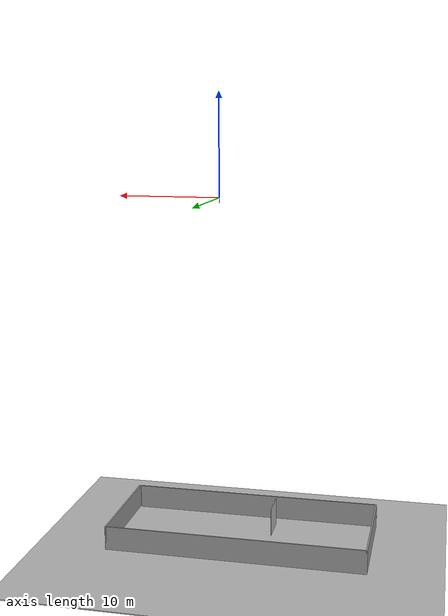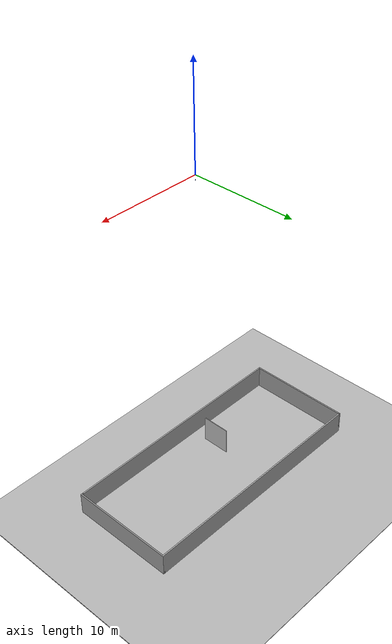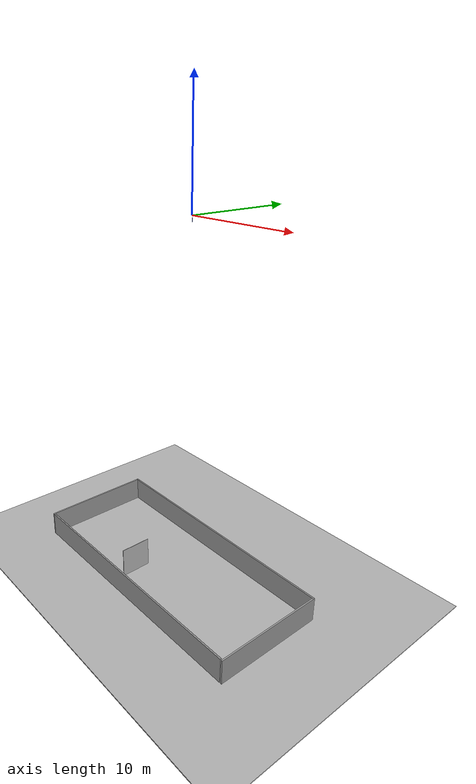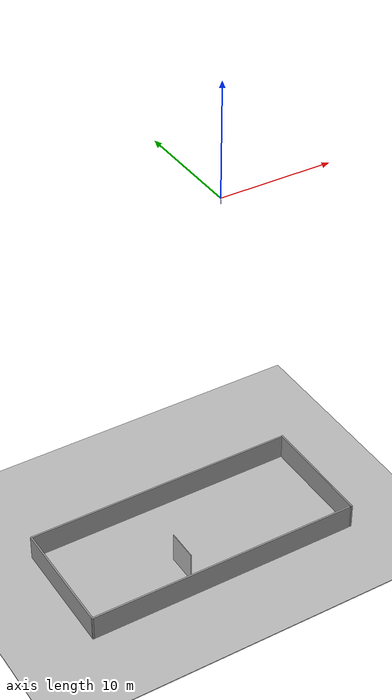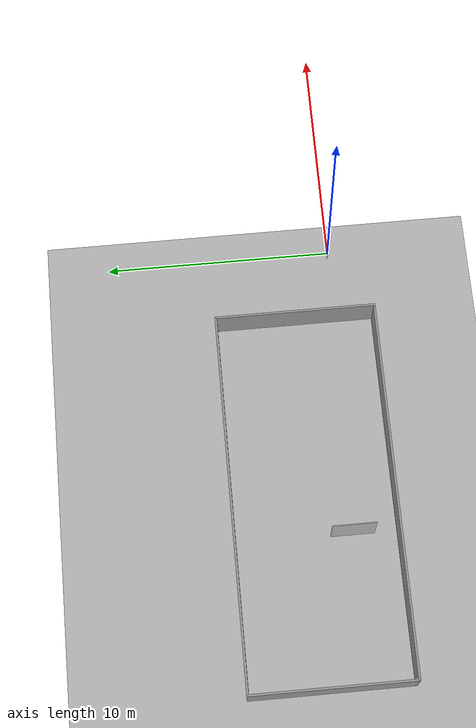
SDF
<sdf version="1.7">
 <world name="oceans_waves">
  <physics name="default_physics" default="1" type="ode">
   <max_step_size>0.002</max_step_size>
   <real_time_factor>1</real_time_factor>
   <real_time_update_rate>500</real_time_update_rate>
  </physics>
  <scene>
   <ambient>0.01 0.01 0.01 1</ambient>
   <sky><clouds><speed>12</speed></clouds></sky>
   <shadows>1</shadows>
   <background>0.7 0.7 0.7 1</background>
  </scene>
  <spherical_coordinates>
   <latitude_deg>56.719</latitude_deg>
   <longitude_deg>3.51562</longitude_deg>
   <surface_model>EARTH_WGS84</surface_model>
   <elevation>0</elevation>
   <heading_deg>0</heading_deg>
  </spherical_coordinates>
  <light name="sun1" type="directional">
   <pose>50 0 150 0 -0 0</pose>
   <diffuse>1 1 1 1</diffuse>
   <specular>0.1 0.1 0.1 1</specular>
   <direction>0.3 0.3 -1</direction>
   <cast_shadows>0</cast_shadows>
   <attenuation><range>10</range></attenuation>
   <spot><inner_angle>0</inner_angle><outer_angle>0</outer_angle><falloff>0</falloff></spot>
  </light>
  <light name="sun_diffuse" type="directional">
   <pose>-50 0 -150 0 -0 0</pose>
   <diffuse>0.6 0.6 0.6 1</diffuse>
   <specular>0 0 0 1</specular>
   <direction>-0.3 -0.3 -1</direction>
   <cast_shadows>0</cast_shadows>
   <attenuation><range>10</range></attenuation>
   <spot><inner_angle>0</inner_angle><outer_angle>0</outer_angle><falloff>0</falloff></spot>
  </light>
  <model name="world_ned">
   <static>1</static>
   <link name="world_ned">
    <gravity>0</gravity>
    <pose>0 0 0 -3.14159 -0 1.5708</pose>
    <visual name="N_visual">
     <pose>0.25 0 0 1.5708 -0 1.5708</pose>
     <geometry><cylinder><radius>0.01</radius><length>0.5</length></cylinder></geometry>
     <material>
      <script><uri>file://media/materials/scripts/gazebo.material</uri><name>Gazebo/Red</name></script>
     </material>
    </visual>
    <visual name="E_visual">
     <pose>0 0.25 0 1.5708 -0 0</pose>
     <geometry><cylinder><radius>0.01</radius><length>0.5</length></cylinder></geometry>
     <material>
      <script><uri>file://media/materials/scripts/gazebo.material</uri><name>Gazebo/Green</name></script>
     </material>
    </visual>
    <visual name="D_visual">
     <pose>0 0 0.25 0 -0 0</pose>
     <geometry><cylinder><radius>0.01</radius><length>0.5</length></cylinder></geometry>
     <material>
      <script><uri>file://media/materials/scripts/gazebo.material</uri><name>Gazebo/Blue</name></script>
     </material>
    </visual>
   </link>
  </model>
  <model name="sea_bottom">
   <static>1</static>
   <link name="sea_bottom">
    <collision name="collision"><geometry><box><size>2000 2000 0.1</size></box></geometry></collision>
    <visual name="visual">
     <cast_shadows>0</cast_shadows>
     <geometry><box><size>2000 2000 0.1</size></box></geometry>
     <material>
      <script>
       <uri>file://Media/materials/scripts/sand.material</uri>
       <name>UUVSimulator/SandAndStones</name>
      </script>
      <emissive>0.2 0.2 0.2 1</emissive>
     </material>
    </visual>
   </link>
   <pose>0 0 -35 0 -0 0</pose>
  </model>
  <plugin name="underwater_current_plugin" filename="libuuv_underwater_current_ros_plugin.so">
   <namespace>hydrodynamics</namespace>
   <constant_current>
    <topic>current_velocity</topic>
    <velocity><mean>0</mean><min>0</min><max>5</max><mu>0.0</mu><noiseAmp>0.0</noiseAmp></velocity>
    <horizontal_angle>
     <mean>0</mean>
     <min>-3.141592653589793238</min>
     <max>3.141592653589793238</max>
     <mu>0.0</mu>
     <noiseAmp>0.0</noiseAmp>
    </horizontal_angle>
    <vertical_angle>
     <mean>0</mean>
     <min>-3.141592653589793238</min>
     <max>3.141592653589793238</max>
     <mu>0.0</mu>
     <noiseAmp>0.0</noiseAmp>
    </vertical_angle>
   </constant_current>
  </plugin>
  <plugin name="sc_interface" filename="libuuv_sc_ros_interface_plugin.so"/>
  <gravity>0 0 -9.8</gravity>
  <magnetic_field>6e-06 2.3e-05 -4.2e-05</magnetic_field>
  <atmosphere type="adiabatic"/>
  <model name="Marker0">
   <static>1</static>
   <link name="link">
    <visual name="visual">
     <geometry><mesh><uri>model://marker0/meshes/Marker0.dae</uri><scale>6 6 6</scale></mesh></geometry>
    </visual>
   </link>
   <pose>-5.06799 -2.46516 -35 0 -0 0</pose>
  </model>
  <model name="swimming_pool_bigger">
   <pose>0 0 -35 0 -0 0</pose>
   <link name="Wall_5">
    <collision name="Wall_5_Collision">
     <geometry><box><size>11.25 0.15 2.5</size></box></geometry>
     <pose>0 0 1.25 0 -0 0</pose>
    </collision>
    <visual name="Wall_5_Visual">
     <pose>0 0 1.25 0 -0 0</pose>
     <geometry><box><size>11.25 0.15 2.5</size></box></geometry>
     <material>
      <script><uri>file://media/materials/scripts/gazebo.material</uri><name>Gazebo/Grey</name></script>
      <ambient>1 1 1 1</ambient>
     </material>
     <meta><layer>0</layer></meta>
    </visual>
    <pose>-15.5179 0 0 0 -0 1.5708</pose>
   </link>
   <link name="Wall_6">
    <collision name="Wall_6_Collision">
     <geometry><box><size>26.25 0.15 2.5</size></box></geometry>
     <pose>0 0 1.25 0 -0 0</pose>
    </collision>
    <visual name="Wall_6_Visual">
     <pose>0 0 1.25 0 -0 0</pose>
     <geometry><box><size>26.25 0.15 2.5</size></box></geometry>
     <material>
      <script><uri>file://media/materials/scripts/gazebo.material</uri><name>Gazebo/Grey</name></script>
      <ambient>1 1 1 1</ambient>
     </material>
     <meta><layer>0</layer></meta>
    </visual>
    <pose>-2.46791 5.55 0 0 -0 0</pose>
   </link>
   <link name="Wall_7">
    <collision name="Wall_7_Collision">
     <geometry><box><size>11.25 0.15 2.5</size></box></geometry>
     <pose>0 0 1.25 0 -0 0</pose>
    </collision>
    <visual name="Wall_7_Visual">
     <pose>0 0 1.25 0 -0 0</pose>
     <geometry><box><size>11.25 0.15 2.5</size></box></geometry>
     <material>
      <script><uri>file://media/materials/scripts/gazebo.material</uri><name>Gazebo/Grey</name></script>
      <ambient>1 1 1 1</ambient>
     </material>
     <meta><layer>0</layer></meta>
    </visual>
    <pose>10.5821 0 0 0 -0 -1.5708</pose>
   </link>
   <link name="Wall_9">
    <collision name="Wall_9_Collision">
     <geometry><box><size>26 0.15 2.5</size></box></geometry>
     <pose>0 0 1.25 0 -0 0</pose>
    </collision>
    <visual name="Wall_9_Visual">
     <pose>0 0 1.25 0 -0 0</pose>
     <geometry><box><size>26 0.15 2.5</size></box></geometry>
     <material>
      <script><uri>file://media/materials/scripts/gazebo.material</uri><name>Gazebo/Grey</name></script>
      <ambient>1 1 1 1</ambient>
     </material>
     <meta><layer>0</layer></meta>
    </visual>
    <pose>-2.59291 -5.55 0 0 -0 3.14159</pose>
   </link>
   <static>1</static>
  </model>
 </world>
</sdf>
